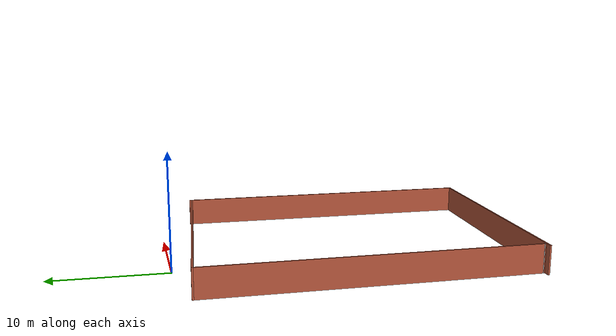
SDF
<?xml version='1.0'?>
<sdf version='1.6'>
  <model name='dynamic_room'>
    <pose frame=''>4.57303 -16.4355 0 0 -0 0</pose>
    <link name='Wall_0'>
      <collision name='Wall_0_Collision'>
        <geometry>
          <box>
            <size>28.6722 0.15 2.5</size>
          </box>
        </geometry>
        <pose frame=''>0 0 1.25 0 -0 0</pose>
      </collision>
      <visual name='Wall_0_Visual'>
        <pose frame=''>0 0 1.25 0 -0 0</pose>
        <geometry>
          <box>
            <size>28.6722 0.15 2.5</size>
          </box>
        </geometry>
        <material>
          <script>
            <uri>file://media/materials/scripts/gazebo.material</uri>
            <name>Gazebo/Bricks</name>
          </script>
          <ambient>1 1 1 1</ambient>
        </material>
        <meta>
          <layer>0</layer>
        </meta>
      </visual>
      <pose frame=''>-11.6345 1.16442 0 0 -0 1.56999</pose>
    </link>
    <link name='Wall_1'>
      <collision name='Wall_1_Collision'>
        <geometry>
          <box>
            <size>23.9695 0.15 2.5</size>
          </box>
        </geometry>
        <pose frame=''>0 0 1.25 0 -0 0</pose>
      </collision>
      <visual name='Wall_1_Visual'>
        <pose frame=''>0 0 1.25 0 -0 0</pose>
        <geometry>
          <box>
            <size>23.9695 0.15 2.5</size>
          </box>
        </geometry>
        <material>
          <script>
            <uri>file://media/materials/scripts/gazebo.material</uri>
            <name>Gazebo/Bricks</name>
          </script>
          <ambient>1 1 1 1</ambient>
        </material>
        <meta>
          <layer>0</layer>
        </meta>
      </visual>
      <pose frame=''>0.209618 14.2608 0 0 -0 -0.097951</pose>
    </link>
    <link name='Wall_2'>
      <collision name='Wall_2_Collision'>
        <geometry>
          <box>
            <size>28.6722 0.15 2.5</size>
          </box>
        </geometry>
        <pose frame=''>0 0 1.25 0 -0 0</pose>
      </collision>
      <visual name='Wall_2_Visual'>
        <pose frame=''>0 0 1.25 0 -0 0</pose>
        <geometry>
          <box>
            <size>28.6722 0.15 2.5</size>
          </box>
        </geometry>
        <material>
          <script>
            <uri>file://media/materials/scripts/gazebo.material</uri>
            <name>Gazebo/Bricks</name>
          </script>
          <ambient>1 1 1 1</ambient>
        </material>
        <meta>
          <layer>0</layer>
        </meta>
      </visual>
      <pose frame=''>12.2131 -1.02266 0 0 -0 -1.5702</pose>
    </link>
    <link name='Wall_3'>
      <collision name='Wall_3_Collision'>
        <geometry>
          <box>
            <size>24.5428 0.15 2.5</size>
          </box>
        </geometry>
        <pose frame=''>0 0 1.25 0 -0 0</pose>
      </collision>
      <visual name='Wall_3_Visual'>
        <pose frame=''>0 0 1.25 0 -0 0</pose>
        <geometry>
          <box>
            <size>24.5428 0.15 2.5</size>
          </box>
        </geometry>
        <material>
          <script>
            <uri>file://media/materials/scripts/gazebo.material</uri>
            <name>Gazebo/Bricks</name>
          </script>
          <ambient>1 1 1 1</ambient>
        </material>
        <meta>
          <layer>0</layer>
        </meta>
      </visual>
      <pose frame=''>-0.067968 -14.3325 0 0 -0 3.05181</pose>
    </link>
    <link name='Wall_4'>
      <collision name='Wall_4_Collision'>
        <geometry>
          <box>
            <size>0.15 0.15 2.5</size>
          </box>
        </geometry>
        <pose frame=''>0 0 1.25 0 -0 0</pose>
      </collision>
      <visual name='Wall_4_Visual'>
        <pose frame=''>0 0 1.25 0 -0 0</pose>
        <geometry>
          <box>
            <size>0.15 0.15 2.5</size>
          </box>
        </geometry>
        <material>
          <script>
            <uri>file://media/materials/scripts/gazebo.material</uri>
            <name>Gazebo/Grey</name>
          </script>
          <ambient>1 1 1 1</ambient>
        </material>
        <meta>
          <layer>0</layer>
        </meta>
      </visual>
      <pose frame=''>-11.646 -13.0967 0 0 -0 0</pose>
    </link>
    <link name='Wall_5'>
      <collision name='Wall_5_Collision'>
        <geometry>
          <box>
            <size>0.15 0.15 2.5</size>
          </box>
        </geometry>
        <pose frame=''>0 0 1.25 0 -0 0</pose>
      </collision>
      <visual name='Wall_5_Visual'>
        <pose frame=''>0 0 1.25 0 -0 0</pose>
        <geometry>
          <box>
            <size>0.15 0.15 2.5</size>
          </box>
        </geometry>
        <material>
          <script>
            <uri>file://media/materials/scripts/gazebo.material</uri>
            <name>Gazebo/Grey</name>
          </script>
          <ambient>1 1 1 1</ambient>
        </material>
        <meta>
          <layer>0</layer>
        </meta>
      </visual>
      <pose frame=''>-11.646 -13.0967 0 0 -0 0</pose>
    </link>
    <static>1</static>
  </model>
</sdf>
